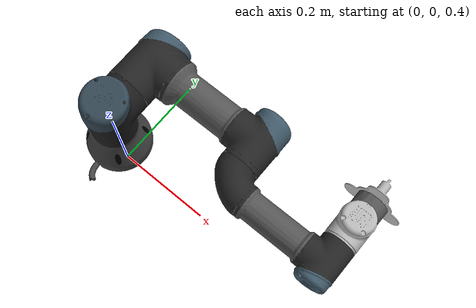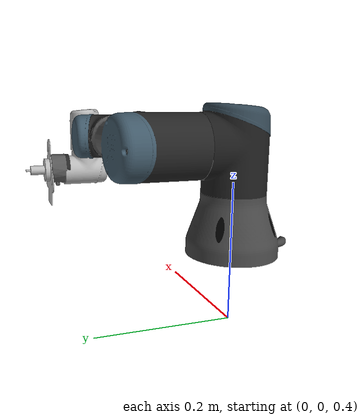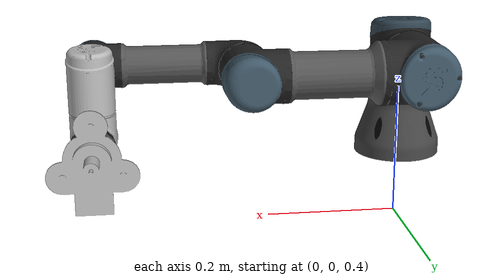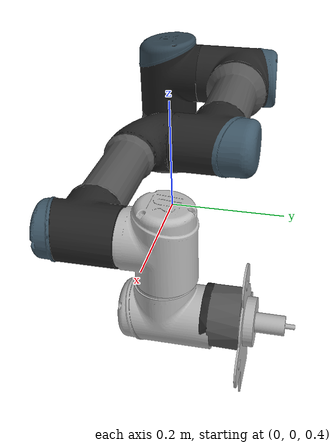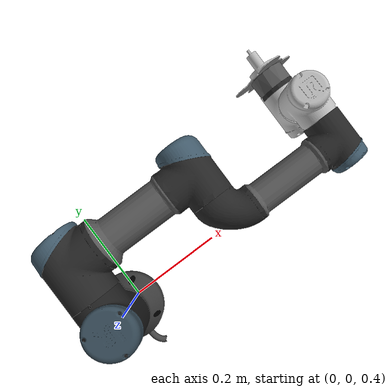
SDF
<sdf version='1.6'>
  <model name='ur3'>
    <link name='ur3_base_link'>
      <pose frame=''>0 0 0.5 0 -0 0</pose>
      <inertial>
        <pose frame=''>0 0 0 0 -0 0</pose>
        <mass>2</mass>
        <inertia>
          <ixx>0.00305317</ixx>
          <ixy>0</ixy>
          <ixz>0</ixz>
          <iyy>0.00305317</iyy>
          <iyz>0</iyz>
          <izz>0.005625</izz>
        </inertia>
      </inertial>
      <collision name='ur3_base_link_collision'>
        <pose frame=''>0 0 0 0 -0 0</pose>
        <geometry>
          <mesh>
            <scale>1 1 1</scale>
            <uri>model://ur_description/meshes/ur3/collision/base.stl</uri>
          </mesh>
        </geometry>
        <surface>
          <contact>
            <ode/>
          </contact>
          <friction>
            <ode/>
          </friction>
        </surface>
      </collision>
      <visual name='ur3_base_link_visual'>
        <pose frame=''>0 0 0 0 -0 0</pose>
        <geometry>
          <mesh>
            <scale>1 1 1</scale>
            <uri>model://ur_description/meshes/ur3/visual/base.dae</uri>
          </mesh>
        </geometry>
        <material>
          <script>
            <uri>__default__</uri>
            <name>__default__</name>
          </script>
        </material>
      </visual>
      <gravity>1</gravity>
      <velocity_decay/>
      <self_collide>1</self_collide>
    </link>
    <joint name='world_to_base' type='fixed'>
      <child>ur3_base_link</child>
      <parent>world</parent>
    </joint>
    <link name='shoulder_link'>
      <pose frame=''>0 0 0.6519 0 -0 0</pose>
      <inertial>
        <pose frame=''>0 0 0 0 -0 0</pose>
        <mass>2</mass>
        <inertia>
          <ixx>0.00809316</ixx>
          <ixy>0</ixy>
          <ixz>0</ixz>
          <iyy>0.00809316</iyy>
          <iyz>0</iyz>
          <izz>0.005625</izz>
        </inertia>
      </inertial>
      <collision name='shoulder_link_collision'>
        <pose frame=''>0 0 0 0 -0 0</pose>
        <geometry>
          <mesh>
            <scale>1 1 1</scale>
            <uri>model://ur_description/meshes/ur3/collision/shoulder.stl</uri>
          </mesh>
        </geometry>
        <surface>
          <contact>
            <ode/>
          </contact>
          <friction>
            <ode/>
          </friction>
        </surface>
      </collision>
      <visual name='shoulder_link_visual'>
        <pose frame=''>0 0 0 0 -0 0</pose>
        <geometry>
          <mesh>
            <scale>1 1 1</scale>
            <uri>model://ur_description/meshes/ur3/visual/shoulder.dae</uri>
          </mesh>
        </geometry>
        <material>
          <script>
            <uri>__default__</uri>
            <name>__default__</name>
          </script>
        </material>
      </visual>
      <gravity>1</gravity>
      <velocity_decay/>
      <self_collide>1</self_collide>
    </link>
    <joint name='shoulder_link_joint' type='revolute'>
      <child>shoulder_link</child>
      <parent>ur3_base_link</parent>
      <axis>
        <xyz>0 0 1</xyz>
        <limit>
          <lower>-6.28319</lower>
          <upper>6.28319</upper>
          <effort>330</effort>
          <velocity>2.16</velocity>
        </limit>
        <dynamics>
          <damping>0</damping>
          <friction>0</friction>
          <spring_reference>0</spring_reference>
          <spring_stiffness>0</spring_stiffness>
        </dynamics>
        <use_parent_model_frame>0</use_parent_model_frame>
      </axis>
    </joint>
    <link name='upper_arm_link'>
      <pose frame=''>0 0.1198 0.6519 3.14159 1.57079 3.14159</pose>
      <inertial>
        <pose frame=''>0 0 0.121825 0 -0 0</pose>
        <mass>3.42</mass>
        <inertia>
          <ixx>0.0217285</ixx>
          <ixy>0</ixy>
          <ixz>0</ixz>
          <iyy>0.0217285</iyy>
          <iyz>0</iyz>
          <izz>0.00961875</izz>
        </inertia>
      </inertial>
      <collision name='upper_arm_link_collision'>
        <pose frame=''>0 0 0 0 -0 0</pose>
        <geometry>
          <mesh>
            <scale>1 1 1</scale>
            <uri>model://ur_description/meshes/ur3/collision/upperarm.stl</uri>
          </mesh>
        </geometry>
        <surface>
          <contact>
            <ode/>
          </contact>
          <friction>
            <ode/>
          </friction>
        </surface>
      </collision>
      <visual name='upper_arm_link_visual'>
        <pose frame=''>0 0 0 0 -0 0</pose>
        <geometry>
          <mesh>
            <scale>1 1 1</scale>
            <uri>model://ur_description/meshes/ur3/visual/upperarm.dae</uri>
          </mesh>
        </geometry>
        <material>
          <script>
            <uri>__default__</uri>
            <name>__default__</name>
          </script>
        </material>
      </visual>
      <gravity>1</gravity>
      <velocity_decay/>
      <self_collide>1</self_collide>
    </link>
    <joint name='upper_arm_link_joint' type='revolute'>
      <child>upper_arm_link</child>
      <parent>shoulder_link</parent>
      <axis>
        <xyz>0 1 0</xyz>
        <limit>
          <lower>-6.28319</lower>
          <upper>6.28319</upper>
          <effort>330</effort>
          <velocity>2.16</velocity>
        </limit>
        <dynamics>
          <damping>0</damping>
          <friction>0</friction>
          <spring_reference>0</spring_reference>
          <spring_stiffness>0</spring_stiffness>
        </dynamics>
        <use_parent_model_frame>0</use_parent_model_frame>
      </axis>
    </joint>
    <link name='forearm_link'>
      <pose frame=''>0.24365 0.0273 0.6519 3.14159 1.57079 3.14159</pose>
      <inertial>
        <pose frame=''>0 0 0.106625 0 -0 0</pose>
        <mass>1.26</mass>
        <inertia>
          <ixx>0.00654681</ixx>
          <ixy>0</ixy>
          <ixz>0</ixz>
          <iyy>0.00654681</iyy>
          <iyz>0</iyz>
          <izz>0.00354375</izz>
        </inertia>
      </inertial>
      <collision name='forearm_link_collision'>
        <pose frame=''>0 0 0 0 -0 0</pose>
        <geometry>
          <mesh>
            <scale>1 1 1</scale>
            <uri>model://ur_description/meshes/ur3/collision/forearm.stl</uri>
          </mesh>
        </geometry>
        <surface>
          <contact>
            <ode/>
          </contact>
          <friction>
            <ode/>
          </friction>
        </surface>
      </collision>
      <visual name='forearm_link_visual'>
        <pose frame=''>0 0 0 0 -0 0</pose>
        <geometry>
          <mesh>
            <scale>1 1 1</scale>
            <uri>model://ur_description/meshes/ur3/visual/forearm.dae</uri>
          </mesh>
        </geometry>
        <material>
          <script>
            <uri>__default__</uri>
            <name>__default__</name>
          </script>
        </material>
      </visual>
      <gravity>1</gravity>
      <velocity_decay/>
      <self_collide>1</self_collide>
    </link>
    <joint name='forearm_link_joint' type='revolute'>
      <child>forearm_link</child>
      <parent>upper_arm_link</parent>
      <axis>
        <xyz>0 1 0</xyz>
        <limit>
          <lower>-3.14159</lower>
          <upper>3.14159</upper>
          <effort>150</effort>
          <velocity>3.15</velocity>
        </limit>
        <dynamics>
          <damping>0</damping>
          <friction>0</friction>
          <spring_reference>0</spring_reference>
          <spring_stiffness>0</spring_stiffness>
        </dynamics>
        <use_parent_model_frame>0</use_parent_model_frame>
      </axis>
    </joint>
    <link name='wrist_1_link'>
      <pose frame=''>0.4569 0.0273 0.6519 3.14159 0 3.14159</pose>
      <inertial>
        <pose frame=''>0 0.08505 0 0 -0 0</pose>
        <mass>0.8</mass>
        <inertia>
          <ixx>0.002085</ixx>
          <ixy>0</ixy>
          <ixz>0</ixz>
          <iyy>0.002085</iyy>
          <iyz>0</iyz>
          <izz>0.00225</izz>
        </inertia>
      </inertial>
      <collision name='wrist_1_link_collision'>
        <pose frame=''>0 0 0 0 -0 0</pose>
        <geometry>
          <mesh>
            <scale>1 1 1</scale>
            <uri>model://ur_description/meshes/ur3/collision/wrist1.stl</uri>
          </mesh>
        </geometry>
        <surface>
          <contact>
            <ode/>
          </contact>
          <friction>
            <ode/>
          </friction>
        </surface>
      </collision>
      <visual name='wrist_1_link_visual'>
        <pose frame=''>0 0 0 0 -0 0</pose>
        <geometry>
          <mesh>
            <scale>1 1 1</scale>
            <uri>model://ur_description/meshes/ur3/visual/wrist1.dae</uri>
          </mesh>
        </geometry>
        <material>
          <script>
            <uri>__default__</uri>
            <name>__default__</name>
          </script>
        </material>
      </visual>
      <gravity>1</gravity>
      <velocity_decay/>
      <self_collide>1</self_collide>
    </link>
    <joint name='wrist_1_joint' type='revolute'>
      <child>wrist_1_link</child>
      <parent>forearm_link</parent>
      <axis>
        <xyz>0 1 0</xyz>
        <limit>
          <lower>-6.28319</lower>
          <upper>6.28319</upper>
          <effort>54</effort>
          <velocity>3.2</velocity>
        </limit>
        <dynamics>
          <damping>0</damping>
          <friction>0</friction>
          <spring_reference>0</spring_reference>
          <spring_stiffness>0</spring_stiffness>
        </dynamics>
        <use_parent_model_frame>0</use_parent_model_frame>
      </axis>
    </joint>
    <link name='wrist_2_link'>
      <pose frame=''>0.4569 0.11235 0.6519 3.14159 0 3.14159</pose>
      <inertial>
        <pose frame=''>0 0 0.08535 0 -0 0</pose>
        <mass>0.8</mass>
        <inertia>
          <ixx>0.002085</ixx>
          <ixy>0</ixy>
          <ixz>0</ixz>
          <iyy>0.002085</iyy>
          <iyz>0</iyz>
          <izz>0.00225</izz>
        </inertia>
      </inertial>
      <collision name='wrist_2_link_collision'>
        <pose frame=''>0 0 0 0 -0 0</pose>
        <geometry>
          <mesh>
            <scale>1 1 1</scale>
            <uri>model://ur_description/meshes/ur3/collision/wrist2.stl</uri>
          </mesh>
        </geometry>
        <surface>
          <contact>
            <ode/>
          </contact>
          <friction>
            <ode/>
          </friction>
        </surface>
      </collision>
      <visual name='wrist_2_link_visual'>
        <pose frame=''>0 0 0 0 -0 0</pose>
        <geometry>
          <mesh>
            <scale>1 1 1</scale>
            <uri>model://ur_description/meshes/ur3/visual/wrist2.dae</uri>
          </mesh>
        </geometry>
        <material>
          <script>
            <uri>__default__</uri>
            <name>__default__</name>
          </script>
        </material>
      </visual>
      <gravity>1</gravity>
      <velocity_decay/>
      <self_collide>1</self_collide>
    </link>
    <joint name='wrist_2_joint' type='revolute'>
      <child>wrist_2_link</child>
      <parent>wrist_1_link</parent>
      <axis>
        <xyz>0 0 1</xyz>
        <limit>
          <lower>-6.28319</lower>
          <upper>6.28319</upper>
          <effort>54</effort>
          <velocity>3.2</velocity>
        </limit>
        <dynamics>
          <damping>0</damping>
          <friction>0</friction>
          <spring_reference>0</spring_reference>
          <spring_stiffness>0</spring_stiffness>
        </dynamics>
        <use_parent_model_frame>0</use_parent_model_frame>
      </axis>
    </joint>
    <link name='wrist_3_link'>
      <pose frame=''>0.4569 0.11235 0.56655 3.14159 0 3.14159</pose>
      <inertial>
        <pose frame=''>0 0.078921 0 1.5708 -0 0</pose>
        <mass>2.35</mass>
        <inertia>
          <ixx>0.100255</ixx>
          <ixy>0</ixy>
          <ixz>0</ixz>
          <iyy>0.100255</iyy>
          <iyz>5.83423e-16</iyz>
          <izz>0.100179</izz>
        </inertia>
      </inertial>
      <collision name='wrist_3_link_collision'>
        <pose frame=''>0 0 0 0 -0 0</pose>
        <geometry>
          <mesh>
            <scale>1 1 1</scale>
            <uri>model://ur_description/meshes/ur3/collision/wrist3.stl</uri>
          </mesh>
        </geometry>
        <surface>
          <contact>
            <ode/>
          </contact>
          <friction>
            <ode/>
          </friction>
        </surface>
      </collision>
      <visual name='wrist_3_link_visual'>
        <pose frame=''>0 0 0 0 -0 0</pose>
        <geometry>
          <mesh>
            <scale>1 1 1</scale>
            <uri>model://ur_description/meshes/ur3/visual/wrist3.dae</uri>
          </mesh>
        </geometry>
        <material>
          <script>
            <uri>__default__</uri>
            <name>__default__</name>
          </script>
        </material>
      </visual>
      <gravity>1</gravity>
      <velocity_decay/>
      <self_collide>1</self_collide>
    </link>
    <joint name='wrist_3_joint' type='revolute'>
      <child>wrist_3_link</child>
      <parent>wrist_2_link</parent>
      <axis>
        <xyz>0 1 0</xyz>
        <limit>
          <lower>-6.28319</lower>
          <upper>6.28319</upper>
          <effort>54</effort>
          <velocity>3.2</velocity>
        </limit>
        <dynamics>
          <damping>0</damping>
          <friction>0</friction>
          <spring_reference>0</spring_reference>
          <spring_stiffness>0</spring_stiffness>
        </dynamics>
        <use_parent_model_frame>0</use_parent_model_frame>
      </axis>
    </joint>
    <link name='ee_link'>
      <pose frame=''>0.4569 0.19425 0.56655 -0 0 1.5708</pose>
      <inertial>
        <pose frame=''>0 0 0 0 -0 0</pose>
        <mass>2</mass>
        <inertia>
          <ixx>0.1</ixx>
          <ixy>0</ixy>
          <ixz>0</ixz>
          <iyy>0.1</iyy>
          <iyz>0</iyz>
          <izz>0.1</izz>
        </inertia>
      </inertial>
      <collision name='ee_link_collision'>
        <pose frame=''>-0.01 0 0 0 -0 0</pose>
        <geometry>
          <box>
            <size>0.01 0.01 0.01</size>
          </box>
        </geometry>
        <surface>
          <contact>
            <ode/>
          </contact>
          <friction>
            <ode/>
          </friction>
        </surface>
      </collision>
      <visual name='ee_link_visual'>
        <pose frame=''>0 0 0 3.14159 -1.57079 3.14159</pose>
        <geometry>
          <mesh>
            <scale>1 1 1</scale>
            <uri>model://ur_description/meshes/ur3/visual/RANGE_SENSOR.dae</uri>
          </mesh>
        </geometry>
        <material>
          <script>
            <uri>__default__</uri>
            <name>__default__</name>
          </script>
        </material>
      </visual>
      <gravity>1</gravity>
      <velocity_decay/>
      <self_collide>1</self_collide>
    </link>
    <joint name='ee_fixed_joint' type='fixed'>
      <child>ee_link</child>
      <parent>wrist_3_link</parent>
      <axis>
        <dynamics>
          <spring_reference>0</spring_reference>
          <spring_stiffness>0</spring_stiffness>
        </dynamics>
        <xyz>0 0 1</xyz>
        <use_parent_model_frame>0</use_parent_model_frame>
        <limit>
          <lower>-1e+16</lower>
          <upper>1e+16</upper>
        </limit>
      </axis>
      <physics>
        <ode>
          <limit>
            <cfm>0</cfm>
            <erp>0.2</erp>
          </limit>
        </ode>
      </physics>
    </joint>
    <link name='ur3_laser1_link'>
      <pose frame=''>0.4569 0.19425 0.61155 -0 0 1.5708</pose>
      <inertial>
        <pose frame=''>0 0 0 0 -0 0</pose>
        <mass>1e-05</mass>
        <inertia>
          <ixx>1e-06</ixx>
          <ixy>0</ixy>
          <ixz>0</ixz>
          <iyy>1e-06</iyy>
          <iyz>0</iyz>
          <izz>1e-06</izz>
        </inertia>
      </inertial>
      <gravity>1</gravity>
      <velocity_decay/>
      <sensor name='ur3_laser_sensor1' type='gpu_ray'>
        <pose frame=''>0 0 0 0 -0 0</pose>
        <visualize>1</visualize>
        <update_rate>40</update_rate>
        <ray>
          <scan>
            <horizontal>
              <samples>3</samples>
              <resolution>1</resolution>
              <min_angle>-0.01</min_angle>
              <max_angle>0.01</max_angle>
            </horizontal>
          </scan>
          <range>
            <min>0.05</min>
            <max>30</max>
            <resolution>0.01</resolution>
          </range>
        </ray>
        <plugin name='gazebo_ros_head_hokuyo_controller' filename='libgazebo_ros_gpu_laser.so'>
          <topicName>/ur3/laser1/scan</topicName>
          <frameName>ee_link</frameName>
        </plugin>
      </sensor>
    </link>
    <joint name='ur3_laser1_joint' type='fixed'>
      <child>ur3_laser1_link</child>
      <parent>ee_link</parent>
      <axis>
        <dynamics>
          <spring_reference>0</spring_reference>
          <spring_stiffness>0</spring_stiffness>
        </dynamics>
        <xyz>0 0 1</xyz>
        <use_parent_model_frame>0</use_parent_model_frame>
        <limit>
          <lower>-1e+16</lower>
          <upper>1e+16</upper>
        </limit>
      </axis>
      <physics>
        <ode>
          <limit>
            <cfm>0</cfm>
            <erp>0.2</erp>
          </limit>
        </ode>
      </physics>
    </joint>
    <link name='ur3_laser2_link'>
      <pose frame=''>0.49587 0.19425 0.54405 -0 0 1.5708</pose>
      <inertial>
        <pose frame=''>0 0 0 0 -0 0</pose>
        <mass>1e-05</mass>
        <inertia>
          <ixx>1e-06</ixx>
          <ixy>0</ixy>
          <ixz>0</ixz>
          <iyy>1e-06</iyy>
          <iyz>0</iyz>
          <izz>1e-06</izz>
        </inertia>
      </inertial>
      <gravity>1</gravity>
      <velocity_decay/>
      <sensor name='ur3_laser_sensor2' type='gpu_ray'>
        <pose frame=''>0 0 0 0 -0 0</pose>
        <visualize>1</visualize>
        <update_rate>40</update_rate>
        <ray>
          <scan>
            <horizontal>
              <samples>3</samples>
              <resolution>1</resolution>
              <min_angle>-0.01</min_angle>
              <max_angle>0.01</max_angle>
            </horizontal>
          </scan>
          <range>
            <min>0.05</min>
            <max>30</max>
            <resolution>0.01</resolution>
          </range>
        </ray>
        <plugin name='gazebo_ros_head_hokuyo_controller' filename='libgazebo_ros_gpu_laser.so'>
          <topicName>/ur3/laser2/scan</topicName>
          <frameName>ee_link</frameName>
        </plugin>
      </sensor>
    </link>
    <joint name='ur3_laser2_joint' type='fixed'>
      <child>ur3_laser2_link</child>
      <parent>ee_link</parent>
      <axis>
        <dynamics>
          <spring_reference>0</spring_reference>
          <spring_stiffness>0</spring_stiffness>
        </dynamics>
        <xyz>0 0 1</xyz>
        <use_parent_model_frame>0</use_parent_model_frame>
        <limit>
          <lower>-1e+16</lower>
          <upper>1e+16</upper>
        </limit>
      </axis>
      <physics>
        <ode>
          <limit>
            <cfm>0</cfm>
            <erp>0.2</erp>
          </limit>
        </ode>
      </physics>
    </joint>
    <link name='ur3_laser3_link'>
      <pose frame=''>0.41793 0.19425 0.54405 -0 0 1.5708</pose>
      <inertial>
        <pose frame=''>0 0 0 0 -0 0</pose>
        <mass>1e-05</mass>
        <inertia>
          <ixx>1e-06</ixx>
          <ixy>0</ixy>
          <ixz>0</ixz>
          <iyy>1e-06</iyy>
          <iyz>0</iyz>
          <izz>1e-06</izz>
        </inertia>
      </inertial>
      <gravity>1</gravity>
      <velocity_decay/>
      <sensor name='ur3_laser_sensor3' type='gpu_ray'>
        <pose frame=''>0 0 0 0 -0 0</pose>
        <visualize>1</visualize>
        <update_rate>40</update_rate>
        <ray>
          <scan>
            <horizontal>
              <samples>3</samples>
              <resolution>1</resolution>
              <min_angle>-0.01</min_angle>
              <max_angle>0.01</max_angle>
            </horizontal>
          </scan>
          <range>
            <min>0.05</min>
            <max>30</max>
            <resolution>0.01</resolution>
          </range>
        </ray>
        <plugin name='gazebo_ros_head_hokuyo_controller' filename='libgazebo_ros_gpu_laser.so'>
          <topicName>/ur3/laser3/scan</topicName>
          <frameName>ee_link</frameName>
        </plugin>
      </sensor>
    </link>
    <joint name='ur3_laser3_joint' type='fixed'>
      <child>ur3_laser3_link</child>
      <parent>ee_link</parent>
      <axis>
        <dynamics>
          <spring_reference>0</spring_reference>
          <spring_stiffness>0</spring_stiffness>
        </dynamics>
        <xyz>0 0 1</xyz>
        <use_parent_model_frame>0</use_parent_model_frame>
        <limit>
          <lower>-1e+16</lower>
          <upper>1e+16</upper>
        </limit>
      </axis>
      <physics>
        <ode>
          <limit>
            <cfm>0</cfm>
            <erp>0.2</erp>
          </limit>
        </ode>
      </physics>
    </joint>
  </model>
</sdf>
